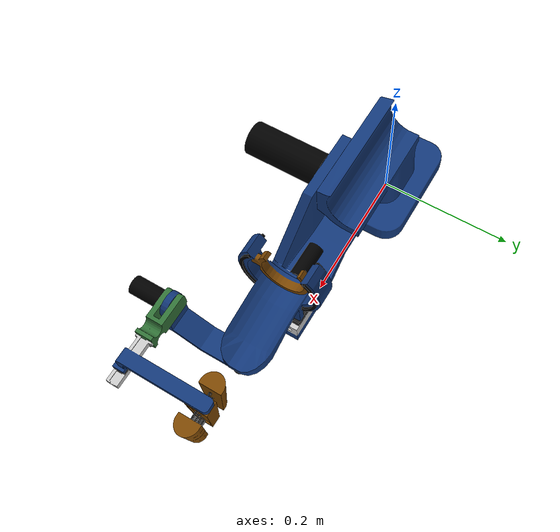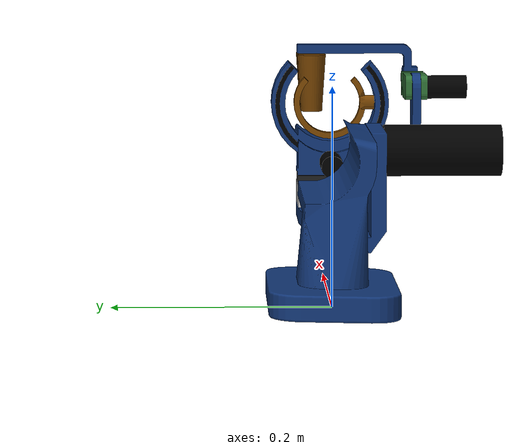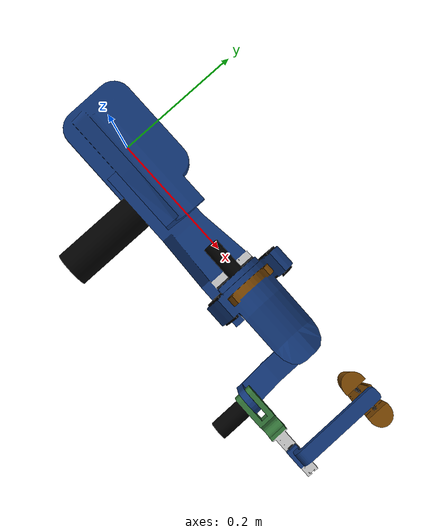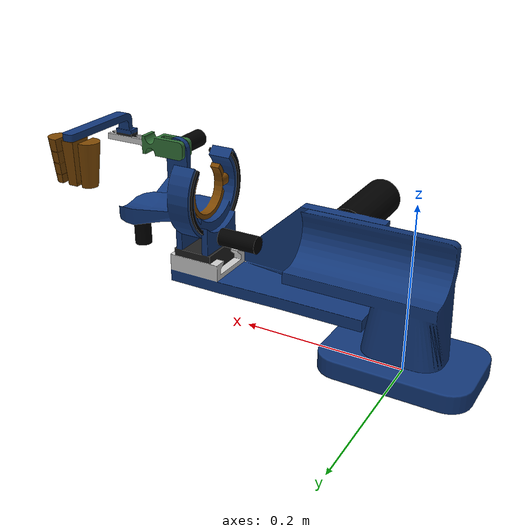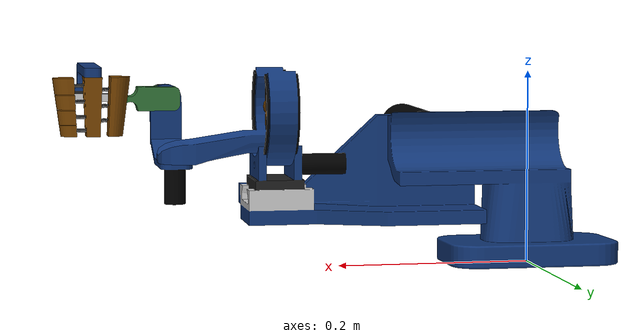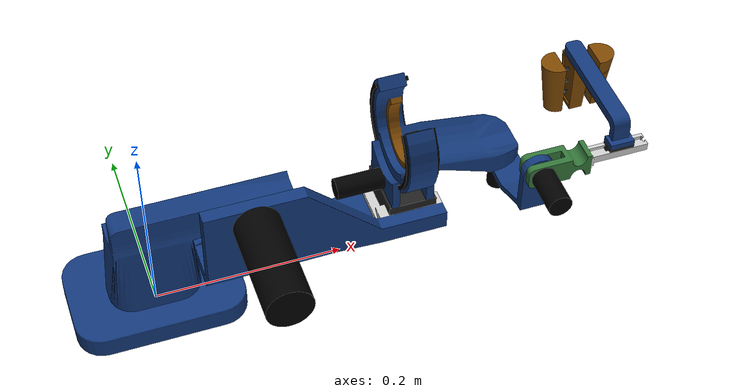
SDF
<?xml version="1.0" ?>
<sdf version="1.6">
	<model name="ForearmRehabActive">
		<pose>0.0 0.0 0.0 0.0 0.0 0.0</pose>
		<link name="DummyBase">
			<gravity>false</gravity>
			<self_collide>false</self_collide>
			<pose>0.0 0.0 0.0 0.0 -0.0 0.0</pose>
			<inertial>
				<mass>1.0</mass>
				<inertia>
					<ixx>1.0</ixx>
					<ixy>0.0</ixy>
					<ixz>0.0</ixz>
					<iyy>1.0</iyy>
					<iyz>0.0</iyz>
					<izz>1.0</izz>
				</inertia>
				<pose>0 0 0 0 0 0</pose>
			</inertial>
		</link>
		<link name="BaseLink">
			<gravity>true</gravity>
			<self_collide>true</self_collide>
			<pose>0.0 0.0 0.0 0.0 -0.0 0.0</pose>
			<inertial>
				<mass>1.0</mass>
				<inertia>
					<ixx>1.0</ixx>
					<ixy>0.0</ixy>
					<ixz>0.0</ixz>
					<iyy>1.0</iyy>
					<iyz>0.0</iyz>
					<izz>1.0</izz>
				</inertia>
				<pose>0 0 0 0 0 0</pose>
			</inertial>
			<visual name="VIS_BaseLink">
				<pose>0.0 0.0 0.0 0.0 -0.0 0.0</pose>
				<geometry>
					<mesh>
						<uri>model://ForearmRehabActive/meshes/visual/VIS_BaseLink.dae</uri>
						<scale>1.0 1.0 1.0</scale>
					</mesh>
				</geometry>
			</visual>
		</link>
		<link name="ElbowWristLink">
			<gravity>true</gravity>
			<self_collide>true</self_collide>
			<pose>0.09929899871349335 -0.03790299966931343 0.13185299932956696 0.0 -0.0 0.0</pose>
			<inertial>
				<mass>1.0</mass>
				<inertia>
					<ixx>1.0</ixx>
					<ixy>0.0</ixy>
					<ixz>0.0</ixz>
					<iyy>1.0</iyy>
					<iyz>0.0</iyz>
					<izz>1.0</izz>
				</inertia>
				<pose>0 0 0 0 0 0</pose>
			</inertial>
			<visual name="VIS_ElbowWristLink">
				<pose>4.3213367462158203e-07 3.5762786865234375e-07 -1.4901161193847656e-08 0.0 -0.0 0.0</pose>
				<geometry>
					<mesh>
						<uri>model://ForearmRehabActive/meshes/visual/VIS_ElbowWristLink.dae</uri>
						<scale>1.0 1.0 1.0</scale>
					</mesh>
				</geometry>
			</visual>
		</link>
		<link name="WristLink1">
			<gravity>true</gravity>
			<self_collide>true</self_collide>
			<pose>0.2647169977426529 -0.009253999218344688 0.16250299848616123 0.0 -0.0 0.0</pose>
			<inertial>
				<mass>1.0</mass>
				<inertia>
					<ixx>1.0</ixx>
					<ixy>0.0</ixy>
					<ixz>0.0</ixz>
					<iyy>1.0</iyy>
					<iyz>0.0</iyz>
					<izz>1.0</izz>
				</inertia>
				<pose>0 0 0 0 0 0</pose>
			</inertial>
			<visual name="VIS_WristLink1">
				<pose>0.0 3.725290298461914e-07 -4.76837158203125e-07 2.117582368135751e-22 -0.0 3.552713678800501e-15</pose>
				<geometry>
					<mesh>
						<uri>model://ForearmRehabActive/meshes/visual/VIS_WristLink1.dae</uri>
						<scale>1.0 1.0 1.0</scale>
					</mesh>
				</geometry>
			</visual>
		</link>
		<link name="WristLink2">
			<gravity>true</gravity>
			<self_collide>true</self_collide>
			<pose>0.36778799444437027 -0.016864999197423458 0.10667699761688709 0.0 -0.0 0.0</pose>
			<inertial>
				<mass>1.0</mass>
				<inertia>
					<ixx>1.0</ixx>
					<ixy>0.0</ixy>
					<ixz>0.0</ixz>
					<iyy>1.0</iyy>
					<iyz>0.0</iyz>
					<izz>1.0</izz>
				</inertia>
				<pose>0 0 0 0 0 0</pose>
			</inertial>
			<visual name="VIS_WristLink2">
				<pose>0.0 0.0 0.0 2.117582368135751e-22 -0.0 3.552713678800501e-15</pose>
				<geometry>
					<mesh>
						<uri>model://ForearmRehabActive/meshes/visual/VIS_WristLink2.dae</uri>
						<scale>1.0 1.0 1.0</scale>
					</mesh>
				</geometry>
			</visual>
		</link>
		<link name="ElasticHingePart1">
			<gravity>true</gravity>
			<self_collide>true</self_collide>
			<pose>0.3686009944649413 -0.10258500184863806 0.16900099627673626 0.0 -0.0 0.0</pose>
			<inertial>
				<mass>1.0</mass>
				<inertia>
					<ixx>1.0</ixx>
					<ixy>0.0</ixy>
					<ixz>0.0</ixz>
					<iyy>1.0</iyy>
					<iyz>0.0</iyz>
					<izz>1.0</izz>
				</inertia>
				<pose>0 0 0 0 0 0</pose>
			</inertial>
			<visual name="VIS_ElasticHingePart1">
				<pose>0.0 0.0 0.0 -1.262177448353619e-29 -0.0 2.117582368135751e-22</pose>
				<geometry>
					<mesh>
						<uri>model://ForearmRehabActive/meshes/visual/VIS_ElasticHingePart1.dae</uri>
						<scale>1.0 1.0 1.0</scale>
					</mesh>
				</geometry>
			</visual>
		</link>
		<link name="HandInterface">
			<gravity>true</gravity>
			<self_collide>true</self_collide>
			<pose>0.4526229948969558 0.0023079970851540565 0.1982989963144064 0.0 -0.0 0.0</pose>
			<inertial>
				<mass>1.0</mass>
				<inertia>
					<ixx>1.0</ixx>
					<ixy>0.0</ixy>
					<ixz>0.0</ixz>
					<iyy>1.0</iyy>
					<iyz>0.0</iyz>
					<izz>1.0</izz>
				</inertia>
				<pose>0 0 0 0 0 0</pose>
			</inertial>
			<visual name="VIS_HandInterface">
				<pose>-3.2782554626464844e-07 -4.172325134277344e-07 -4.6193599700927734e-07 0.0 -0.0 0.0</pose>
				<geometry>
					<mesh>
						<uri>model://ForearmRehabActive/meshes/visual/VIS_HandInterface.dae</uri>
						<scale>1.0 1.0 1.0</scale>
					</mesh>
				</geometry>
			</visual>
		</link>
		<joint name="BaseLink_joint" type="fixed">
			<parent>DummyBase</parent>
			<child>BaseLink</child>
			<axis>
				<xyz>0.0 0.0 1.0</xyz>
				<dynamics>
					<damping>0.0</damping>
					<friction>0.0</friction>
					<spring_reference>0.0</spring_reference>
					<spring_stiffness>0.0</spring_stiffness>
				</dynamics>
			</axis>
			<physics>
				<ode>
					<cfm_damping>false</cfm_damping>
					<implicit_spring_damper>false</implicit_spring_damper>
					<cfm>0.0</cfm>
					<erp>0.20000000298023224</erp>
				</ode>
			</physics>
		</joint>
		<joint name="ElbowWristLink_joint" type="revolute">
			<parent>BaseLink</parent>
			<child>ElbowWristLink</child>
			<axis>
				<xyz>0.0 1.0 0.0</xyz>
				<dynamics>
					<damping>0.0</damping>
					<friction>0.0</friction>
					<spring_reference>0.0</spring_reference>
					<spring_stiffness>0.0</spring_stiffness>
				</dynamics>
				<limit>
					<lower>-1.5707963267948966</lower>
					<upper>0.0</upper>
				</limit>
			</axis>
			<physics>
				<ode>
					<cfm_damping>false</cfm_damping>
					<implicit_spring_damper>false</implicit_spring_damper>
					<cfm>0.0</cfm>
					<erp>0.20000000298023224</erp>
				</ode>
			</physics>
		</joint>
		<joint name="WristLink1_joint" type="revolute">
			<parent>ElbowWristLink</parent>
			<child>WristLink1</child>
			<axis>
				<xyz>1.0 0.0 0.0</xyz>
				<dynamics>
					<damping>0.0</damping>
					<friction>0.0</friction>
					<spring_reference>0.0</spring_reference>
					<spring_stiffness>0.0</spring_stiffness>
				</dynamics>
				<limit>
					<lower>-1.9198621771937625</lower>
					<upper>1.9198621771937625</upper>
				</limit>
			</axis>
			<physics>
				<ode>
					<cfm_damping>false</cfm_damping>
					<implicit_spring_damper>false</implicit_spring_damper>
					<cfm>0.0</cfm>
					<erp>0.20000000298023224</erp>
				</ode>
			</physics>
		</joint>
		<joint name="WristLink2_joint" type="revolute">
			<parent>WristLink1</parent>
			<child>WristLink2</child>
			<axis>
				<xyz>0.0 0.0 1.0</xyz>
				<dynamics>
					<damping>0.0</damping>
					<friction>0.0</friction>
					<spring_reference>0.0</spring_reference>
					<spring_stiffness>0.0</spring_stiffness>
				</dynamics>
				<limit>
					<lower>-0.9599310885968813</lower>
					<upper>2.0943951023931953</upper>
				</limit>
			</axis>
			<physics>
				<ode>
					<cfm_damping>false</cfm_damping>
					<implicit_spring_damper>false</implicit_spring_damper>
					<cfm>0.0</cfm>
					<erp>0.20000000298023224</erp>
				</ode>
			</physics>
		</joint>
		<joint name="ElasticHingePart1_joint" type="revolute">
			<parent>WristLink2</parent>
			<child>ElasticHingePart1</child>
			<axis>
				<xyz>0.0 1.0 0.0</xyz>
				<dynamics>
					<damping>0.0</damping>
					<friction>0.0</friction>
					<spring_reference>0.0</spring_reference>
					<spring_stiffness>0.0</spring_stiffness>
				</dynamics>
				<limit>
					<lower>-1.0471975511965976</lower>
					<upper>0.5235987755982988</upper>
				</limit>
			</axis>
			<physics>
				<ode>
					<cfm_damping>false</cfm_damping>
					<implicit_spring_damper>false</implicit_spring_damper>
					<cfm>0.0</cfm>
					<erp>0.20000000298023224</erp>
				</ode>
			</physics>
		</joint>
		<joint name="HandInterface_joint" type="fixed">
			<parent>ElasticHingePart1</parent>
			<child>HandInterface</child>
			<axis>
				<xyz>0.0 0.0 1.0</xyz>
				<dynamics>
					<damping>0.0</damping>
					<friction>0.0</friction>
					<spring_reference>0.0</spring_reference>
					<spring_stiffness>0.0</spring_stiffness>
				</dynamics>
			</axis>
			<physics>
				<ode>
					<cfm_damping>false</cfm_damping>
					<implicit_spring_damper>false</implicit_spring_damper>
					<cfm>0.0</cfm>
					<erp>0.20000000298023224</erp>
				</ode>
			</physics>
		</joint>
	</model>
</sdf>
